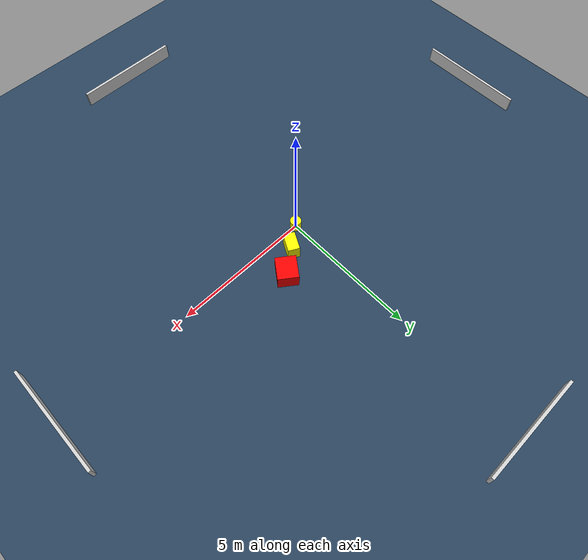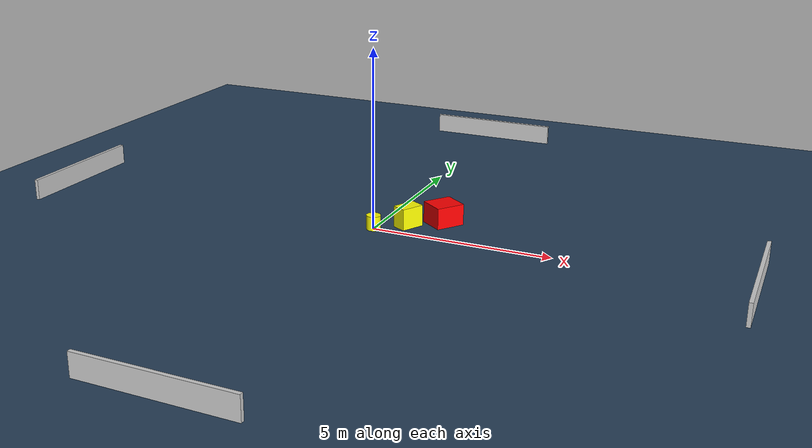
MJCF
<?xml version="1.0" ?>
<mujoco model="generated_environment">
  <option timestep="0.01" integrator="RK4" cone="elliptic"/>
  <default>
    <geom density="1"/>
  </default>
  <asset>
    <texture builtin="gradient" height="3072" name="skybox" rgb1="0.3 0.5 0.7" rgb2="0 0 0" type="skybox" width="512"/>
    <texture builtin="checker" height="300" name="groundplane" rgb1="0.2 0.3 0.4" rgb2="0.1 0.2 0.3" type="2d" width="300"/>
    <material name="groundplane" reflectance="0.2" texrepeat="5 5" texture="groundplane"/>
  </asset>
  <worldbody>
    <light dir="0 0 -1" directional="true" pos="0 0 1.5"/>
    <geom condim="3" friction="0.5 0.005 0.001" material="groundplane" name="floor" pos="0 0 0" size="0 0 0.05" type="plane"/>
    <body name="walls">
      <geom name="wall_1" condim="4" pos="-10.0 0.0 0.3" rgba="0.800000011920929 0.800000011920929 0.800000011920929 1.0" size="0.05 2.0 0.3" type="box"/>
      <geom name="wall_2" condim="4" pos="10.0 0.0 0.3" rgba="0.800000011920929 0.800000011920929 0.800000011920929 1.0" size="0.05 2.0 0.3" type="box"/>
      <geom name="wall_3" condim="4" pos="0.0 -10.0 0.3" rgba="0.800000011920929 0.800000011920929 0.800000011920929 1.0" size="2.0 0.05 0.3" type="box"/>
      <geom name="wall_4" condim="4" pos="0.0 10.0 0.3" rgba="0.800000011920929 0.800000011920929 0.800000011920929 1.0" size="2.0 0.05 0.3" type="box"/>
    </body>
    <body name="robot">
      <joint name="joint_x" type="slide" pos="0 0 0" axis="1 0 0"/>
      <joint name="joint_y" type="slide" pos="0 0 0" axis="0 1 0"/>
      <geom name="robot" type="cylinder" pos="0.0 0.0 0.2" size="0.2 0.2 0.0" mass="5.0" friction="1.0 0.005 0.0001" condim="4" rgba="1.0 1.0 0.0 1.0"/>
    </body>
    <body name="obstacle_1_movable">
      <geom name="obstacle_1_movable" condim="4" pos="0.7733419159594584 0.5861910251663814 0.3" euler="0 0 62.05570208136874" friction="0.0 0.005 0.001" rgba="1.0 1.0 0.0 1.0" size="0.33535986950193303 0.21030873332205388 0.3" type="box" mass="0.1"/>
      <joint type="free"/>
    </body>
    <body name="obstacle_2_static">
      <geom name="obstacle_2_static" condim="4" pos="1.5759130237771959 1.2004843949282877 0.3" euler="0 0 143.8068114987054" friction="0.0 0.005 0.001" rgba="1.0 0.0 0.0 1.0" size="0.3692155570594789 0.41444899746791625 0.3" type="box"/>
    </body>
  </worldbody>
  <actuator>
    <motor name="actuator_x" joint="joint_x" gear="1" ctrlrange="-1 1"/>
    <motor name="actuator_y" joint="joint_y" gear="1" ctrlrange="-1 1"/>
  </actuator>
</mujoco>
